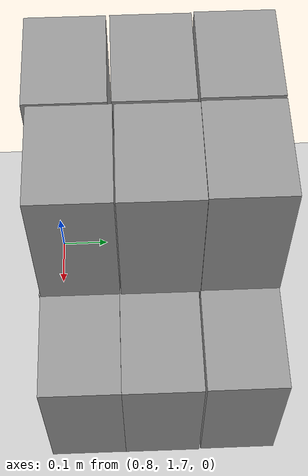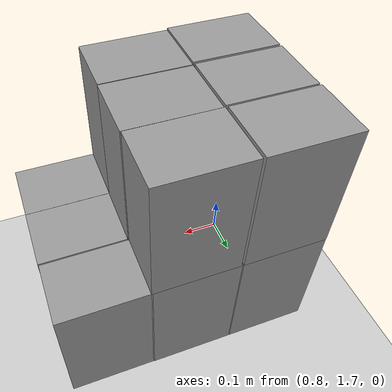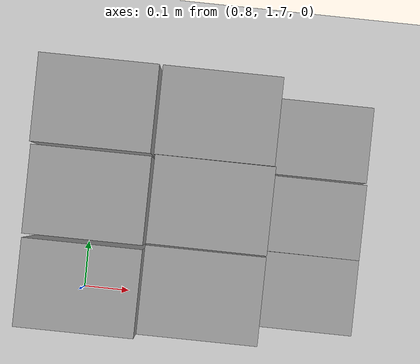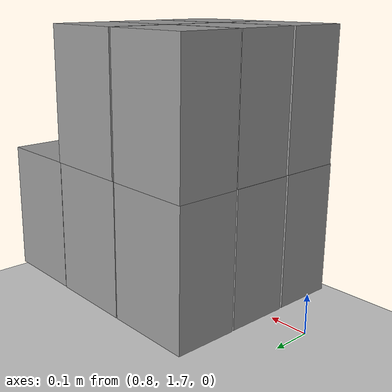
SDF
<sdf version="1.7">
 <world name="default">
  <model name="ground_plane">
   <static>1</static>
   <link name="link">
    <collision name="collision">
     <geometry><plane><normal>0 0 1</normal><size>100 100</size></plane></geometry>
     <surface>
      <contact><collide_bitmask>65535</collide_bitmask></contact>
      <friction><ode><mu>100</mu><mu2>50</mu2></ode></friction>
     </surface>
    </collision>
    <visual name="visual">
     <cast_shadows>0</cast_shadows>
     <geometry><plane><normal>0 0 1</normal><size>100 100</size></plane></geometry>
     <material>
      <script><uri>file://media/materials/scripts/gazebo.material</uri><name>Gazebo/Grey</name></script>
     </material>
    </visual>
   </link>
  </model>
  <model name="box_19_14_29_0">
   <link name="link_0">
    <inertial>
     <mass>3</mass>
     <inertia>
      <ixx>0.025925</ixx>
      <ixy>0</ixy>
      <ixz>0</ixz>
      <iyy>0.03005</iyy>
      <iyz>0</iyz>
      <izz>0.013925</izz>
     </inertia>
    </inertial>
    <visual name="visual">
     <geometry><box><size>0.19 0.14 0.29</size></box></geometry>
     <material>
      <lighting>1</lighting>
      <script><uri>file://media/materials/scripts/gazebo.material</uri><name>Gazebo/Grey</name></script>
      <shader type="pixel"><normal_map>__default__</normal_map></shader>
      <ambient>0.3 0.3 0.3 1</ambient>
      <diffuse>0.7 0.7 0.7 1</diffuse>
      <specular>0.01 0.01 0.01 1</specular>
      <emissive>0 0 0 1</emissive>
     </material>
    </visual>
    <collision name="collision">
     <geometry><box><size>0.19 0.14 0.29</size></box></geometry>
     <surface>
      <friction>
       <ode><mu>0.6</mu><mu2>0.6</mu2><fdir1>0 0 0</fdir1><slip1>0</slip1><slip2>0</slip2></ode>
       <torsional>
        <coefficient>1</coefficient>
        <patch_radius>0</patch_radius>
        <surface_radius>0</surface_radius>
        <use_patch_radius>1</use_patch_radius>
        <ode><slip>0</slip></ode>
       </torsional>
      </friction>
      <bounce><restitution_coefficient>0</restitution_coefficient><threshold>1e+06</threshold></bounce>
      <contact>
       <collide_without_contact>0</collide_without_contact>
       <collide_without_contact_bitmask>1</collide_without_contact_bitmask>
       <collide_bitmask>1</collide_bitmask>
       <ode>
        <soft_cfm>0</soft_cfm>
        <soft_erp>0.2</soft_erp>
        <kp>1e+13</kp>
        <kd>1</kd>
        <max_vel>0.01</max_vel>
        <min_depth>0.01</min_depth>
       </ode>
       <bullet>
        <split_impulse>1</split_impulse>
        <split_impulse_penetration_threshold>-0.01</split_impulse_penetration_threshold>
        <soft_cfm>0</soft_cfm>
        <soft_erp>0.2</soft_erp>
        <kp>1e+13</kp>
        <kd>1</kd>
       </bullet>
      </contact>
     </surface>
    </collision>
   </link>
   <static>1</static>
   <pose>0.866212 1.90477 0.267012 6.7e-05 0.000116 0.001132</pose>
  </model>
  <model name="box_19_14_29_1">
   <link name="link_0">
    <inertial>
     <mass>3</mass>
     <inertia>
      <ixx>0.025925</ixx>
      <ixy>0</ixy>
      <ixz>0</ixz>
      <iyy>0.03005</iyy>
      <iyz>0</iyz>
      <izz>0.013925</izz>
     </inertia>
    </inertial>
    <visual name="visual">
     <geometry><box><size>0.19 0.14 0.29</size></box></geometry>
     <material>
      <lighting>1</lighting>
      <script><uri>file://media/materials/scripts/gazebo.material</uri><name>Gazebo/Grey</name></script>
      <shader type="pixel"><normal_map>__default__</normal_map></shader>
      <ambient>0.3 0.3 0.3 1</ambient>
      <diffuse>0.7 0.7 0.7 1</diffuse>
      <specular>0.01 0.01 0.01 1</specular>
      <emissive>0 0 0 1</emissive>
     </material>
    </visual>
    <collision name="collision">
     <geometry><box><size>0.19 0.14 0.29</size></box></geometry>
     <surface>
      <friction>
       <ode><mu>0.6</mu><mu2>0.6</mu2><fdir1>0 0 0</fdir1><slip1>0</slip1><slip2>0</slip2></ode>
       <torsional>
        <coefficient>1</coefficient>
        <patch_radius>0</patch_radius>
        <surface_radius>0</surface_radius>
        <use_patch_radius>1</use_patch_radius>
        <ode><slip>0</slip></ode>
       </torsional>
      </friction>
      <bounce><restitution_coefficient>0</restitution_coefficient><threshold>1e+06</threshold></bounce>
      <contact>
       <collide_without_contact>0</collide_without_contact>
       <collide_without_contact_bitmask>1</collide_without_contact_bitmask>
       <collide_bitmask>1</collide_bitmask>
       <ode>
        <soft_cfm>0</soft_cfm>
        <soft_erp>0.2</soft_erp>
        <kp>1e+13</kp>
        <kd>1</kd>
        <max_vel>0.01</max_vel>
        <min_depth>0.01</min_depth>
       </ode>
       <bullet>
        <split_impulse>1</split_impulse>
        <split_impulse_penetration_threshold>-0.01</split_impulse_penetration_threshold>
        <soft_cfm>0</soft_cfm>
        <soft_erp>0.2</soft_erp>
        <kp>1e+13</kp>
        <kd>1</kd>
       </bullet>
      </contact>
     </surface>
    </collision>
   </link>
   <static>1</static>
   <pose>0.865082 2.04928 0.267013 2.6e-05 9.9e-05 0.001315</pose>
  </model>
  <model name="box_19_14_29_2">
   <link name="link_0">
    <inertial>
     <mass>3</mass>
     <inertia>
      <ixx>0.025925</ixx>
      <ixy>0</ixy>
      <ixz>0</ixz>
      <iyy>0.03005</iyy>
      <iyz>0</iyz>
      <izz>0.013925</izz>
     </inertia>
    </inertial>
    <visual name="visual">
     <geometry><box><size>0.19 0.14 0.29</size></box></geometry>
     <material>
      <lighting>1</lighting>
      <script><uri>file://media/materials/scripts/gazebo.material</uri><name>Gazebo/Grey</name></script>
      <shader type="pixel"><normal_map>__default__</normal_map></shader>
      <ambient>0.3 0.3 0.3 1</ambient>
      <diffuse>0.7 0.7 0.7 1</diffuse>
      <specular>0.01 0.01 0.01 1</specular>
      <emissive>0 0 0 1</emissive>
     </material>
    </visual>
    <collision name="collision">
     <geometry><box><size>0.19 0.14 0.29</size></box></geometry>
     <surface>
      <friction>
       <ode><mu>0.6</mu><mu2>0.6</mu2><fdir1>0 0 0</fdir1><slip1>0</slip1><slip2>0</slip2></ode>
       <torsional>
        <coefficient>1</coefficient>
        <patch_radius>0</patch_radius>
        <surface_radius>0</surface_radius>
        <use_patch_radius>1</use_patch_radius>
        <ode><slip>0</slip></ode>
       </torsional>
      </friction>
      <bounce><restitution_coefficient>0</restitution_coefficient><threshold>1e+06</threshold></bounce>
      <contact>
       <collide_without_contact>0</collide_without_contact>
       <collide_without_contact_bitmask>1</collide_without_contact_bitmask>
       <collide_bitmask>1</collide_bitmask>
       <ode>
        <soft_cfm>0</soft_cfm>
        <soft_erp>0.2</soft_erp>
        <kp>1e+13</kp>
        <kd>1</kd>
        <max_vel>0.01</max_vel>
        <min_depth>0.01</min_depth>
       </ode>
       <bullet>
        <split_impulse>1</split_impulse>
        <split_impulse_penetration_threshold>-0.01</split_impulse_penetration_threshold>
        <soft_cfm>0</soft_cfm>
        <soft_erp>0.2</soft_erp>
        <kp>1e+13</kp>
        <kd>1</kd>
       </bullet>
      </contact>
     </surface>
    </collision>
   </link>
   <static>1</static>
   <pose>1.05734 2.04939 0.26698 5e-06 -3.3e-05 0.00024</pose>
  </model>
  <model name="box_19_14_29_3">
   <link name="link_0">
    <inertial>
     <mass>3</mass>
     <inertia>
      <ixx>0.025925</ixx>
      <ixy>0</ixy>
      <ixz>0</ixz>
      <iyy>0.03005</iyy>
      <iyz>0</iyz>
      <izz>0.013925</izz>
     </inertia>
    </inertial>
    <visual name="visual">
     <geometry><box><size>0.19 0.14 0.29</size></box></geometry>
     <material>
      <lighting>1</lighting>
      <script><uri>file://media/materials/scripts/gazebo.material</uri><name>Gazebo/Grey</name></script>
      <shader type="pixel"><normal_map>__default__</normal_map></shader>
      <ambient>0.3 0.3 0.3 1</ambient>
      <diffuse>0.7 0.7 0.7 1</diffuse>
      <specular>0.01 0.01 0.01 1</specular>
      <emissive>0 0 0 1</emissive>
     </material>
    </visual>
    <collision name="collision">
     <geometry><box><size>0.19 0.14 0.29</size></box></geometry>
     <surface>
      <friction>
       <ode><mu>0.6</mu><mu2>0.6</mu2><fdir1>0 0 0</fdir1><slip1>0</slip1><slip2>0</slip2></ode>
       <torsional>
        <coefficient>1</coefficient>
        <patch_radius>0</patch_radius>
        <surface_radius>0</surface_radius>
        <use_patch_radius>1</use_patch_radius>
        <ode><slip>0</slip></ode>
       </torsional>
      </friction>
      <bounce><restitution_coefficient>0</restitution_coefficient><threshold>1e+06</threshold></bounce>
      <contact>
       <collide_without_contact>0</collide_without_contact>
       <collide_without_contact_bitmask>1</collide_without_contact_bitmask>
       <collide_bitmask>1</collide_bitmask>
       <ode>
        <soft_cfm>0</soft_cfm>
        <soft_erp>0.2</soft_erp>
        <kp>1e+13</kp>
        <kd>1</kd>
        <max_vel>0.01</max_vel>
        <min_depth>0.01</min_depth>
       </ode>
       <bullet>
        <split_impulse>1</split_impulse>
        <split_impulse_penetration_threshold>-0.01</split_impulse_penetration_threshold>
        <soft_cfm>0</soft_cfm>
        <soft_erp>0.2</soft_erp>
        <kp>1e+13</kp>
        <kd>1</kd>
       </bullet>
      </contact>
     </surface>
    </collision>
   </link>
   <static>1</static>
   <pose>1.06057 1.90593 0.26698 -7e-06 1.4e-05 -0.000942</pose>
  </model>
  <model name="box_19_14_29_4">
   <link name="link_0">
    <inertial>
     <mass>3</mass>
     <inertia>
      <ixx>0.025925</ixx>
      <ixy>0</ixy>
      <ixz>0</ixz>
      <iyy>0.03005</iyy>
      <iyz>0</iyz>
      <izz>0.013925</izz>
     </inertia>
    </inertial>
    <visual name="visual">
     <geometry><box><size>0.19 0.14 0.29</size></box></geometry>
     <material>
      <lighting>1</lighting>
      <script><uri>file://media/materials/scripts/gazebo.material</uri><name>Gazebo/Grey</name></script>
      <shader type="pixel"><normal_map>__default__</normal_map></shader>
      <ambient>0.3 0.3 0.3 1</ambient>
      <diffuse>0.7 0.7 0.7 1</diffuse>
      <specular>0.01 0.01 0.01 1</specular>
      <emissive>0 0 0 1</emissive>
     </material>
    </visual>
    <collision name="collision">
     <geometry><box><size>0.19 0.14 0.29</size></box></geometry>
     <surface>
      <friction>
       <ode><mu>0.6</mu><mu2>0.6</mu2><fdir1>0 0 0</fdir1><slip1>0</slip1><slip2>0</slip2></ode>
       <torsional>
        <coefficient>1</coefficient>
        <patch_radius>0</patch_radius>
        <surface_radius>0</surface_radius>
        <use_patch_radius>1</use_patch_radius>
        <ode><slip>0</slip></ode>
       </torsional>
      </friction>
      <bounce><restitution_coefficient>0</restitution_coefficient><threshold>1e+06</threshold></bounce>
      <contact>
       <collide_without_contact>0</collide_without_contact>
       <collide_without_contact_bitmask>1</collide_without_contact_bitmask>
       <collide_bitmask>1</collide_bitmask>
       <ode>
        <soft_cfm>0</soft_cfm>
        <soft_erp>0.2</soft_erp>
        <kp>1e+13</kp>
        <kd>1</kd>
        <max_vel>0.01</max_vel>
        <min_depth>0.01</min_depth>
       </ode>
       <bullet>
        <split_impulse>1</split_impulse>
        <split_impulse_penetration_threshold>-0.01</split_impulse_penetration_threshold>
        <soft_cfm>0</soft_cfm>
        <soft_erp>0.2</soft_erp>
        <kp>1e+13</kp>
        <kd>1</kd>
       </bullet>
      </contact>
     </surface>
    </collision>
   </link>
   <static>1</static>
   <pose>1.05936 1.76411 0.266976 3.5e-05 -0.000135 -0.001245</pose>
  </model>
  <model name="box_19_14_29_5">
   <link name="link_0">
    <inertial>
     <mass>3</mass>
     <inertia>
      <ixx>0.025925</ixx>
      <ixy>0</ixy>
      <ixz>0</ixz>
      <iyy>0.03005</iyy>
      <iyz>0</iyz>
      <izz>0.013925</izz>
     </inertia>
    </inertial>
    <visual name="visual">
     <geometry><box><size>0.19 0.14 0.29</size></box></geometry>
     <material>
      <lighting>1</lighting>
      <script><uri>file://media/materials/scripts/gazebo.material</uri><name>Gazebo/Grey</name></script>
      <shader type="pixel"><normal_map>__default__</normal_map></shader>
      <ambient>0.3 0.3 0.3 1</ambient>
      <diffuse>0.7 0.7 0.7 1</diffuse>
      <specular>0.01 0.01 0.01 1</specular>
      <emissive>0 0 0 1</emissive>
     </material>
    </visual>
    <collision name="collision">
     <geometry><box><size>0.19 0.14 0.29</size></box></geometry>
     <surface>
      <friction>
       <ode><mu>0.6</mu><mu2>0.6</mu2><fdir1>0 0 0</fdir1><slip1>0</slip1><slip2>0</slip2></ode>
       <torsional>
        <coefficient>1</coefficient>
        <patch_radius>0</patch_radius>
        <surface_radius>0</surface_radius>
        <use_patch_radius>1</use_patch_radius>
        <ode><slip>0</slip></ode>
       </torsional>
      </friction>
      <bounce><restitution_coefficient>0</restitution_coefficient><threshold>1e+06</threshold></bounce>
      <contact>
       <collide_without_contact>0</collide_without_contact>
       <collide_without_contact_bitmask>1</collide_without_contact_bitmask>
       <collide_bitmask>1</collide_bitmask>
       <ode>
        <soft_cfm>0</soft_cfm>
        <soft_erp>0.2</soft_erp>
        <kp>1e+13</kp>
        <kd>1</kd>
        <max_vel>0.01</max_vel>
        <min_depth>0.01</min_depth>
       </ode>
       <bullet>
        <split_impulse>1</split_impulse>
        <split_impulse_penetration_threshold>-0.01</split_impulse_penetration_threshold>
        <soft_cfm>0</soft_cfm>
        <soft_erp>0.2</soft_erp>
        <kp>1e+13</kp>
        <kd>1</kd>
       </bullet>
      </contact>
     </surface>
    </collision>
   </link>
   <static>1</static>
   <pose>1.25022 1.76566 0.266976 0.000153 -0.000155 -0.001401</pose>
  </model>
  <model name="box_19_14_29_9">
   <link name="link_0">
    <inertial>
     <mass>3</mass>
     <inertia>
      <ixx>0.025925</ixx>
      <ixy>0</ixy>
      <ixz>0</ixz>
      <iyy>0.03005</iyy>
      <iyz>0</iyz>
      <izz>0.013925</izz>
     </inertia>
    </inertial>
    <visual name="visual">
     <geometry><box><size>0.19 0.14 0.29</size></box></geometry>
     <material>
      <lighting>1</lighting>
      <script><uri>file://media/materials/scripts/gazebo.material</uri><name>Gazebo/Grey</name></script>
      <shader type="pixel"><normal_map>__default__</normal_map></shader>
      <ambient>0.3 0.3 0.3 1</ambient>
      <diffuse>0.7 0.7 0.7 1</diffuse>
      <specular>0.01 0.01 0.01 1</specular>
      <emissive>0 0 0 1</emissive>
     </material>
    </visual>
    <collision name="collision">
     <geometry><box><size>0.19 0.14 0.29</size></box></geometry>
     <surface>
      <friction>
       <ode><mu>0.6</mu><mu2>0.6</mu2><fdir1>0 0 0</fdir1><slip1>0</slip1><slip2>0</slip2></ode>
       <torsional>
        <coefficient>1</coefficient>
        <patch_radius>0</patch_radius>
        <surface_radius>0</surface_radius>
        <use_patch_radius>1</use_patch_radius>
        <ode><slip>0</slip></ode>
       </torsional>
      </friction>
      <bounce><restitution_coefficient>0</restitution_coefficient><threshold>1e+06</threshold></bounce>
      <contact>
       <collide_without_contact>0</collide_without_contact>
       <collide_without_contact_bitmask>1</collide_without_contact_bitmask>
       <collide_bitmask>1</collide_bitmask>
       <ode>
        <soft_cfm>0</soft_cfm>
        <soft_erp>0.2</soft_erp>
        <kp>1e+13</kp>
        <kd>1</kd>
        <max_vel>0.01</max_vel>
        <min_depth>0.01</min_depth>
       </ode>
       <bullet>
        <split_impulse>1</split_impulse>
        <split_impulse_penetration_threshold>-0.01</split_impulse_penetration_threshold>
        <soft_cfm>0</soft_cfm>
        <soft_erp>0.2</soft_erp>
        <kp>1e+13</kp>
        <kd>1</kd>
       </bullet>
      </contact>
     </surface>
    </collision>
   </link>
   <static>1</static>
   <pose>1.25074 1.90578 0.266992 0.000149 -8.1e-05 -0.00253</pose>
  </model>
  <model name="box_19_14_29_13">
   <link name="link_0">
    <inertial>
     <mass>3</mass>
     <inertia>
      <ixx>0.025925</ixx>
      <ixy>0</ixy>
      <ixz>0</ixz>
      <iyy>0.03005</iyy>
      <iyz>0</iyz>
      <izz>0.013925</izz>
     </inertia>
    </inertial>
    <visual name="visual">
     <geometry><box><size>0.19 0.14 0.29</size></box></geometry>
     <material>
      <lighting>1</lighting>
      <script><uri>file://media/materials/scripts/gazebo.material</uri><name>Gazebo/Grey</name></script>
      <shader type="pixel"><normal_map>__default__</normal_map></shader>
      <ambient>0.3 0.3 0.3 1</ambient>
      <diffuse>0.7 0.7 0.7 1</diffuse>
      <specular>0.01 0.01 0.01 1</specular>
      <emissive>0 0 0 1</emissive>
     </material>
    </visual>
    <collision name="collision">
     <geometry><box><size>0.19 0.14 0.29</size></box></geometry>
     <surface>
      <friction>
       <ode><mu>0.6</mu><mu2>0.6</mu2><fdir1>0 0 0</fdir1><slip1>0</slip1><slip2>0</slip2></ode>
       <torsional>
        <coefficient>1</coefficient>
        <patch_radius>0</patch_radius>
        <surface_radius>0</surface_radius>
        <use_patch_radius>1</use_patch_radius>
        <ode><slip>0</slip></ode>
       </torsional>
      </friction>
      <bounce><restitution_coefficient>0</restitution_coefficient><threshold>1e+06</threshold></bounce>
      <contact>
       <collide_without_contact>0</collide_without_contact>
       <collide_without_contact_bitmask>1</collide_without_contact_bitmask>
       <collide_bitmask>1</collide_bitmask>
       <ode>
        <soft_cfm>0</soft_cfm>
        <soft_erp>0.2</soft_erp>
        <kp>1e+13</kp>
        <kd>1</kd>
        <max_vel>0.01</max_vel>
        <min_depth>0.01</min_depth>
       </ode>
       <bullet>
        <split_impulse>1</split_impulse>
        <split_impulse_penetration_threshold>-0.01</split_impulse_penetration_threshold>
        <soft_cfm>0</soft_cfm>
        <soft_erp>0.2</soft_erp>
        <kp>1e+13</kp>
        <kd>1</kd>
       </bullet>
      </contact>
     </surface>
    </collision>
   </link>
   <static>1</static>
   <pose>1.24969 2.04865 0.266995 -4.6e-05 -7.9e-05 0.0005</pose>
  </model>
  <model name="box_19_14_29_17">
   <link name="link_0">
    <inertial>
     <mass>3</mass>
     <inertia>
      <ixx>0.025925</ixx>
      <ixy>0</ixy>
      <ixz>0</ixz>
      <iyy>0.03005</iyy>
      <iyz>0</iyz>
      <izz>0.013925</izz>
     </inertia>
    </inertial>
    <visual name="visual">
     <geometry><box><size>0.19 0.14 0.29</size></box></geometry>
     <material>
      <lighting>1</lighting>
      <script><uri>file://media/materials/scripts/gazebo.material</uri><name>Gazebo/Grey</name></script>
      <shader type="pixel"><normal_map>__default__</normal_map></shader>
      <ambient>0.3 0.3 0.3 1</ambient>
      <diffuse>0.7 0.7 0.7 1</diffuse>
      <specular>0.01 0.01 0.01 1</specular>
      <emissive>0 0 0 1</emissive>
     </material>
    </visual>
    <collision name="collision">
     <geometry><box><size>0.19 0.14 0.29</size></box></geometry>
     <surface>
      <friction>
       <ode><mu>0.6</mu><mu2>0.6</mu2><fdir1>0 0 0</fdir1><slip1>0</slip1><slip2>0</slip2></ode>
       <torsional>
        <coefficient>1</coefficient>
        <patch_radius>0</patch_radius>
        <surface_radius>0</surface_radius>
        <use_patch_radius>1</use_patch_radius>
        <ode><slip>0</slip></ode>
       </torsional>
      </friction>
      <bounce><restitution_coefficient>0</restitution_coefficient><threshold>1e+06</threshold></bounce>
      <contact>
       <collide_without_contact>0</collide_without_contact>
       <collide_without_contact_bitmask>1</collide_without_contact_bitmask>
       <collide_bitmask>1</collide_bitmask>
       <ode>
        <soft_cfm>0</soft_cfm>
        <soft_erp>0.2</soft_erp>
        <kp>1e+13</kp>
        <kd>1</kd>
        <max_vel>0.01</max_vel>
        <min_depth>0.01</min_depth>
       </ode>
       <bullet>
        <split_impulse>1</split_impulse>
        <split_impulse_penetration_threshold>-0.01</split_impulse_penetration_threshold>
        <soft_cfm>0</soft_cfm>
        <soft_erp>0.2</soft_erp>
        <kp>1e+13</kp>
        <kd>1</kd>
       </bullet>
      </contact>
     </surface>
    </collision>
   </link>
   <static>1</static>
   <pose>0.867109 1.75829 0.267006 8.6e-05 8.2e-05 0.000588</pose>
  </model>
  <model name="box_19_14_29_18">
   <link name="link_0">
    <inertial>
     <mass>3</mass>
     <inertia>
      <ixx>0.025925</ixx>
      <ixy>0</ixy>
      <ixz>0</ixz>
      <iyy>0.03005</iyy>
      <iyz>0</iyz>
      <izz>0.013925</izz>
     </inertia>
    </inertial>
    <visual name="visual">
     <geometry><box><size>0.19 0.14 0.29</size></box></geometry>
     <material>
      <lighting>1</lighting>
      <script><uri>file://media/materials/scripts/gazebo.material</uri><name>Gazebo/Grey</name></script>
      <shader type="pixel"><normal_map>__default__</normal_map></shader>
      <ambient>0.3 0.3 0.3 1</ambient>
      <diffuse>0.7 0.7 0.7 1</diffuse>
      <specular>0.01 0.01 0.01 1</specular>
      <emissive>0 0 0 1</emissive>
     </material>
    </visual>
    <collision name="collision">
     <geometry><box><size>0.19 0.14 0.29</size></box></geometry>
     <surface>
      <friction>
       <ode><mu>0.6</mu><mu2>0.6</mu2><fdir1>0 0 0</fdir1><slip1>0</slip1><slip2>0</slip2></ode>
       <torsional>
        <coefficient>1</coefficient>
        <patch_radius>0</patch_radius>
        <surface_radius>0</surface_radius>
        <use_patch_radius>1</use_patch_radius>
        <ode><slip>0</slip></ode>
       </torsional>
      </friction>
      <bounce><restitution_coefficient>0</restitution_coefficient><threshold>1e+06</threshold></bounce>
      <contact>
       <collide_without_contact>0</collide_without_contact>
       <collide_without_contact_bitmask>1</collide_without_contact_bitmask>
       <collide_bitmask>1</collide_bitmask>
       <ode>
        <soft_cfm>0</soft_cfm>
        <soft_erp>0.2</soft_erp>
        <kp>1e+13</kp>
        <kd>1</kd>
        <max_vel>0.01</max_vel>
        <min_depth>0.01</min_depth>
       </ode>
       <bullet>
        <split_impulse>1</split_impulse>
        <split_impulse_penetration_threshold>-0.01</split_impulse_penetration_threshold>
        <soft_cfm>0</soft_cfm>
        <soft_erp>0.2</soft_erp>
        <kp>1e+13</kp>
        <kd>1</kd>
       </bullet>
      </contact>
     </surface>
    </collision>
   </link>
   <static>1</static>
   <pose>0.864965 2.04977 0.55695 -0.000222 3e-05 0.001017</pose>
  </model>
  <model name="box_19_14_29_19">
   <link name="link_0">
    <inertial>
     <mass>3</mass>
     <inertia>
      <ixx>0.025925</ixx>
      <ixy>0</ixy>
      <ixz>0</ixz>
      <iyy>0.03005</iyy>
      <iyz>0</iyz>
      <izz>0.013925</izz>
     </inertia>
    </inertial>
    <visual name="visual">
     <geometry><box><size>0.19 0.14 0.29</size></box></geometry>
     <material>
      <lighting>1</lighting>
      <script><uri>file://media/materials/scripts/gazebo.material</uri><name>Gazebo/Grey</name></script>
      <shader type="pixel"><normal_map>__default__</normal_map></shader>
      <ambient>0.3 0.3 0.3 1</ambient>
      <diffuse>0.7 0.7 0.7 1</diffuse>
      <specular>0.01 0.01 0.01 1</specular>
      <emissive>0 0 0 1</emissive>
     </material>
    </visual>
    <collision name="collision">
     <geometry><box><size>0.19 0.14 0.29</size></box></geometry>
     <surface>
      <friction>
       <ode><mu>0.6</mu><mu2>0.6</mu2><fdir1>0 0 0</fdir1><slip1>0</slip1><slip2>0</slip2></ode>
       <torsional>
        <coefficient>1</coefficient>
        <patch_radius>0</patch_radius>
        <surface_radius>0</surface_radius>
        <use_patch_radius>1</use_patch_radius>
        <ode><slip>0</slip></ode>
       </torsional>
      </friction>
      <bounce><restitution_coefficient>0</restitution_coefficient><threshold>1e+06</threshold></bounce>
      <contact>
       <collide_without_contact>0</collide_without_contact>
       <collide_without_contact_bitmask>1</collide_without_contact_bitmask>
       <collide_bitmask>1</collide_bitmask>
       <ode>
        <soft_cfm>0</soft_cfm>
        <soft_erp>0.2</soft_erp>
        <kp>1e+13</kp>
        <kd>1</kd>
        <max_vel>0.01</max_vel>
        <min_depth>0.01</min_depth>
       </ode>
       <bullet>
        <split_impulse>1</split_impulse>
        <split_impulse_penetration_threshold>-0.01</split_impulse_penetration_threshold>
        <soft_cfm>0</soft_cfm>
        <soft_erp>0.2</soft_erp>
        <kp>1e+13</kp>
        <kd>1</kd>
       </bullet>
      </contact>
     </surface>
    </collision>
   </link>
   <static>1</static>
   <pose>0.867408 1.90559 0.55701 3.9e-05 0.000136 0.001362</pose>
  </model>
  <model name="box_19_14_29_20">
   <link name="link_0">
    <inertial>
     <mass>3</mass>
     <inertia>
      <ixx>0.025925</ixx>
      <ixy>0</ixy>
      <ixz>0</ixz>
      <iyy>0.03005</iyy>
      <iyz>0</iyz>
      <izz>0.013925</izz>
     </inertia>
    </inertial>
    <visual name="visual">
     <geometry><box><size>0.19 0.14 0.29</size></box></geometry>
     <material>
      <lighting>1</lighting>
      <script><uri>file://media/materials/scripts/gazebo.material</uri><name>Gazebo/Grey</name></script>
      <shader type="pixel"><normal_map>__default__</normal_map></shader>
      <ambient>0.3 0.3 0.3 1</ambient>
      <diffuse>0.7 0.7 0.7 1</diffuse>
      <specular>0.01 0.01 0.01 1</specular>
      <emissive>0 0 0 1</emissive>
     </material>
    </visual>
    <collision name="collision">
     <geometry><box><size>0.19 0.14 0.29</size></box></geometry>
     <surface>
      <friction>
       <ode><mu>0.6</mu><mu2>0.6</mu2><fdir1>0 0 0</fdir1><slip1>0</slip1><slip2>0</slip2></ode>
       <torsional>
        <coefficient>1</coefficient>
        <patch_radius>0</patch_radius>
        <surface_radius>0</surface_radius>
        <use_patch_radius>1</use_patch_radius>
        <ode><slip>0</slip></ode>
       </torsional>
      </friction>
      <bounce><restitution_coefficient>0</restitution_coefficient><threshold>1e+06</threshold></bounce>
      <contact>
       <collide_without_contact>0</collide_without_contact>
       <collide_without_contact_bitmask>1</collide_without_contact_bitmask>
       <collide_bitmask>1</collide_bitmask>
       <ode>
        <soft_cfm>0</soft_cfm>
        <soft_erp>0.2</soft_erp>
        <kp>1e+13</kp>
        <kd>1</kd>
        <max_vel>0.01</max_vel>
        <min_depth>0.01</min_depth>
       </ode>
       <bullet>
        <split_impulse>1</split_impulse>
        <split_impulse_penetration_threshold>-0.01</split_impulse_penetration_threshold>
        <soft_cfm>0</soft_cfm>
        <soft_erp>0.2</soft_erp>
        <kp>1e+13</kp>
        <kd>1</kd>
       </bullet>
      </contact>
     </surface>
    </collision>
   </link>
   <static>1</static>
   <pose>0.867969 1.75916 0.556798 0.000654 7.5e-05 0.000479</pose>
  </model>
  <model name="box_19_14_29_21">
   <link name="link_0">
    <inertial>
     <mass>3</mass>
     <inertia>
      <ixx>0.025925</ixx>
      <ixy>0</ixy>
      <ixz>0</ixz>
      <iyy>0.03005</iyy>
      <iyz>0</iyz>
      <izz>0.013925</izz>
     </inertia>
    </inertial>
    <visual name="visual">
     <geometry><box><size>0.19 0.14 0.29</size></box></geometry>
     <material>
      <lighting>1</lighting>
      <script><uri>file://media/materials/scripts/gazebo.material</uri><name>Gazebo/Grey</name></script>
      <shader type="pixel"><normal_map>__default__</normal_map></shader>
      <ambient>0.3 0.3 0.3 1</ambient>
      <diffuse>0.7 0.7 0.7 1</diffuse>
      <specular>0.01 0.01 0.01 1</specular>
      <emissive>0 0 0 1</emissive>
     </material>
    </visual>
    <collision name="collision">
     <geometry><box><size>0.19 0.14 0.29</size></box></geometry>
     <surface>
      <friction>
       <ode><mu>0.6</mu><mu2>0.6</mu2><fdir1>0 0 0</fdir1><slip1>0</slip1><slip2>0</slip2></ode>
       <torsional>
        <coefficient>1</coefficient>
        <patch_radius>0</patch_radius>
        <surface_radius>0</surface_radius>
        <use_patch_radius>1</use_patch_radius>
        <ode><slip>0</slip></ode>
       </torsional>
      </friction>
      <bounce><restitution_coefficient>0</restitution_coefficient><threshold>1e+06</threshold></bounce>
      <contact>
       <collide_without_contact>0</collide_without_contact>
       <collide_without_contact_bitmask>1</collide_without_contact_bitmask>
       <collide_bitmask>1</collide_bitmask>
       <ode>
        <soft_cfm>0</soft_cfm>
        <soft_erp>0.2</soft_erp>
        <kp>1e+13</kp>
        <kd>1</kd>
        <max_vel>0.01</max_vel>
        <min_depth>0.01</min_depth>
       </ode>
       <bullet>
        <split_impulse>1</split_impulse>
        <split_impulse_penetration_threshold>-0.01</split_impulse_penetration_threshold>
        <soft_cfm>0</soft_cfm>
        <soft_erp>0.2</soft_erp>
        <kp>1e+13</kp>
        <kd>1</kd>
       </bullet>
      </contact>
     </surface>
    </collision>
   </link>
   <static>1</static>
   <pose>1.06042 2.0496 0.556971 4.6e-05 -0.000158 5.7e-05</pose>
  </model>
  <model name="box_19_14_29_22">
   <link name="link_0">
    <inertial>
     <mass>3</mass>
     <inertia>
      <ixx>0.025925</ixx>
      <ixy>0</ixy>
      <ixz>0</ixz>
      <iyy>0.03005</iyy>
      <iyz>0</iyz>
      <izz>0.013925</izz>
     </inertia>
    </inertial>
    <visual name="visual">
     <geometry><box><size>0.19 0.14 0.29</size></box></geometry>
     <material>
      <lighting>1</lighting>
      <script><uri>file://media/materials/scripts/gazebo.material</uri><name>Gazebo/Grey</name></script>
      <shader type="pixel"><normal_map>__default__</normal_map></shader>
      <ambient>0.3 0.3 0.3 1</ambient>
      <diffuse>0.7 0.7 0.7 1</diffuse>
      <specular>0.01 0.01 0.01 1</specular>
      <emissive>0 0 0 1</emissive>
     </material>
    </visual>
    <collision name="collision">
     <geometry><box><size>0.19 0.14 0.29</size></box></geometry>
     <surface>
      <friction>
       <ode><mu>0.6</mu><mu2>0.6</mu2><fdir1>0 0 0</fdir1><slip1>0</slip1><slip2>0</slip2></ode>
       <torsional>
        <coefficient>1</coefficient>
        <patch_radius>0</patch_radius>
        <surface_radius>0</surface_radius>
        <use_patch_radius>1</use_patch_radius>
        <ode><slip>0</slip></ode>
       </torsional>
      </friction>
      <bounce><restitution_coefficient>0</restitution_coefficient><threshold>1e+06</threshold></bounce>
      <contact>
       <collide_without_contact>0</collide_without_contact>
       <collide_without_contact_bitmask>1</collide_without_contact_bitmask>
       <collide_bitmask>1</collide_bitmask>
       <ode>
        <soft_cfm>0</soft_cfm>
        <soft_erp>0.2</soft_erp>
        <kp>1e+13</kp>
        <kd>1</kd>
        <max_vel>0.01</max_vel>
        <min_depth>0.01</min_depth>
       </ode>
       <bullet>
        <split_impulse>1</split_impulse>
        <split_impulse_penetration_threshold>-0.01</split_impulse_penetration_threshold>
        <soft_cfm>0</soft_cfm>
        <soft_erp>0.2</soft_erp>
        <kp>1e+13</kp>
        <kd>1</kd>
       </bullet>
      </contact>
     </surface>
    </collision>
   </link>
   <static>1</static>
   <pose>1.06215 1.90922 0.556987 1e-06 -8e-05 -0.00222</pose>
  </model>
  <model name="box_19_14_29_23">
   <link name="link_0">
    <inertial>
     <mass>3</mass>
     <inertia>
      <ixx>0.025925</ixx>
      <ixy>0</ixy>
      <ixz>0</ixz>
      <iyy>0.03005</iyy>
      <iyz>0</iyz>
      <izz>0.013925</izz>
     </inertia>
    </inertial>
    <visual name="visual">
     <geometry><box><size>0.19 0.14 0.29</size></box></geometry>
     <material>
      <lighting>1</lighting>
      <script><uri>file://media/materials/scripts/gazebo.material</uri><name>Gazebo/Grey</name></script>
      <shader type="pixel"><normal_map>__default__</normal_map></shader>
      <ambient>0.3 0.3 0.3 1</ambient>
      <diffuse>0.7 0.7 0.7 1</diffuse>
      <specular>0.01 0.01 0.01 1</specular>
      <emissive>0 0 0 1</emissive>
     </material>
    </visual>
    <collision name="collision">
     <geometry><box><size>0.19 0.14 0.29</size></box></geometry>
     <surface>
      <friction>
       <ode><mu>0.6</mu><mu2>0.6</mu2><fdir1>0 0 0</fdir1><slip1>0</slip1><slip2>0</slip2></ode>
       <torsional>
        <coefficient>1</coefficient>
        <patch_radius>0</patch_radius>
        <surface_radius>0</surface_radius>
        <use_patch_radius>1</use_patch_radius>
        <ode><slip>0</slip></ode>
       </torsional>
      </friction>
      <bounce><restitution_coefficient>0</restitution_coefficient><threshold>1e+06</threshold></bounce>
      <contact>
       <collide_without_contact>0</collide_without_contact>
       <collide_without_contact_bitmask>1</collide_without_contact_bitmask>
       <collide_bitmask>1</collide_bitmask>
       <ode>
        <soft_cfm>0</soft_cfm>
        <soft_erp>0.2</soft_erp>
        <kp>1e+13</kp>
        <kd>1</kd>
        <max_vel>0.01</max_vel>
        <min_depth>0.01</min_depth>
       </ode>
       <bullet>
        <split_impulse>1</split_impulse>
        <split_impulse_penetration_threshold>-0.01</split_impulse_penetration_threshold>
        <soft_cfm>0</soft_cfm>
        <soft_erp>0.2</soft_erp>
        <kp>1e+13</kp>
        <kd>1</kd>
       </bullet>
      </contact>
     </surface>
    </collision>
   </link>
   <static>1</static>
   <pose>1.06154 1.76701 0.556965 0.000203 8e-06 9.1e-05</pose>
  </model>
 </world>
</sdf>
